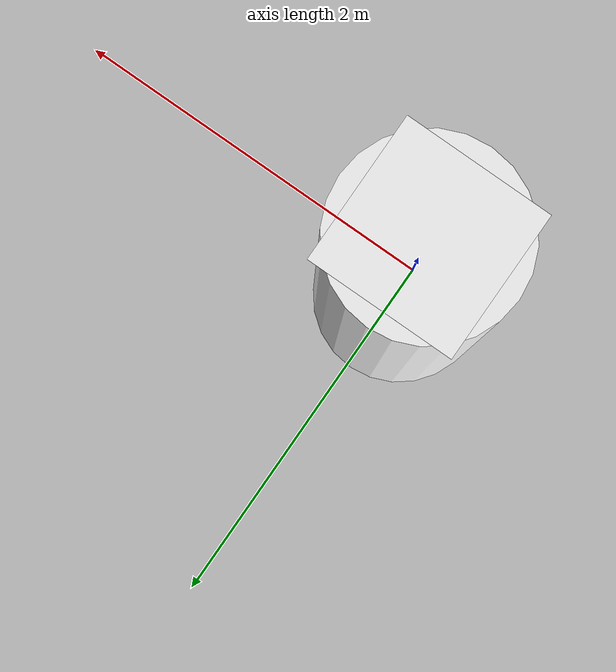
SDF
<?xml version="1.0" ?>
<sdf version="1.8">
  <model name="cylinder">
    <static>true</static>
    <pose>0 0 0 0 0 0</pose>
    <link name="link">
      <pose>0 0 0 0 0 0</pose>
      <collision name="collision">
        <geometry>
          <cylinder>
            <radius>0.5</radius>
            <length>10.0</length>
          </cylinder>
        </geometry>
      </collision>
      <visual name="visual">
        <geometry>
          <cylinder>
            <radius>0.5</radius>
            <length>10.0</length>
          </cylinder>
        </geometry>
        <material>
          <ambient>1 1 1 1</ambient>
          <diffuse>1 1 1 1</diffuse>
          <specular>0.5 0.5 0.5 1</specular>
          <pbr>
            <metal>
              <albedo_map>materials/cylinder_texture.png</albedo_map>
            </metal>
          </pbr>
        </material>
      </visual>

      <visual name="aruco_marker">
        <pose>0 0 5.0 0 0 0</pose>
        <geometry>
          <box>
            <size>0.8 0.8 0.001</size>
          </box>
        </geometry>
        <material>
          <ambient>1 1 1 1</ambient>
          <diffuse>1 1 1 1</diffuse>
          <specular>0.5 0.5 0.5 1</specular>
          <pbr>
            <metal>
              <albedo_map>materials/aruco_marker_0.png</albedo_map>
            </metal>
          </pbr>
        </material>
      </visual>
    </link>
  </model>
</sdf>
